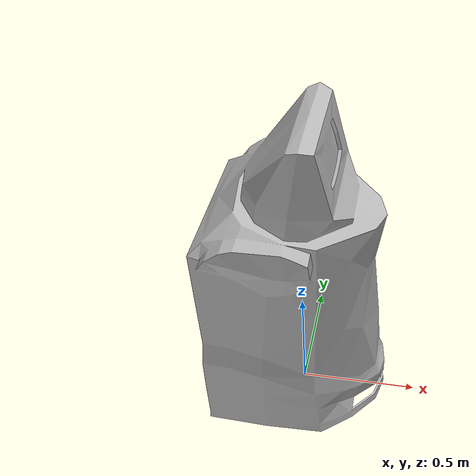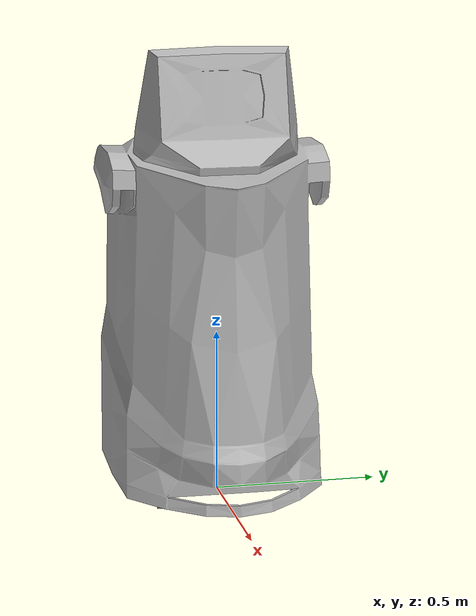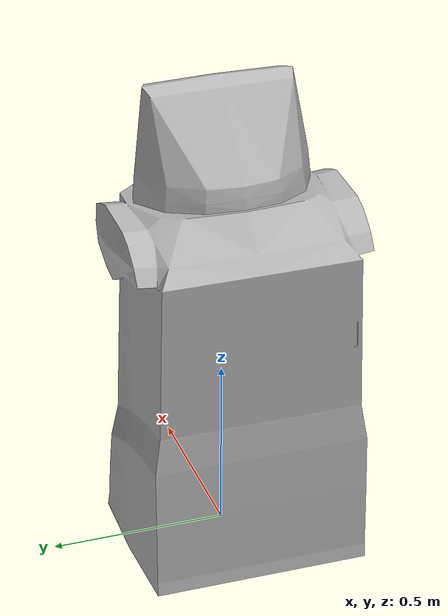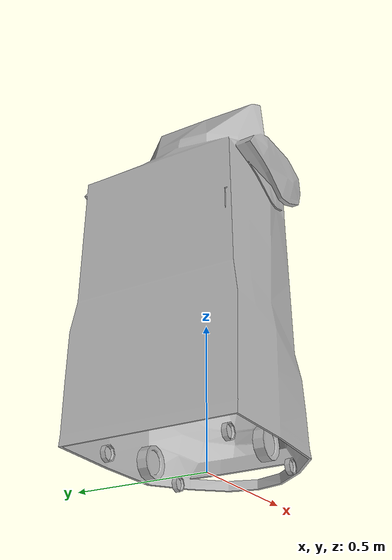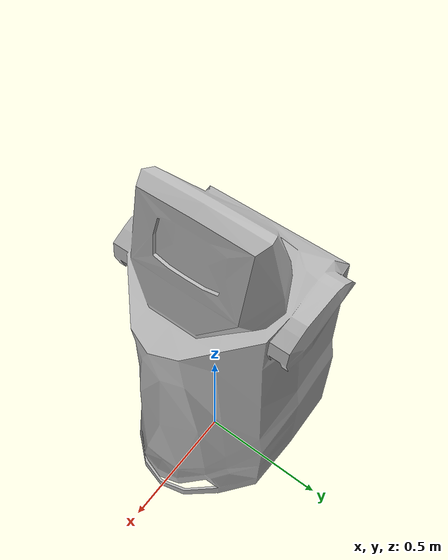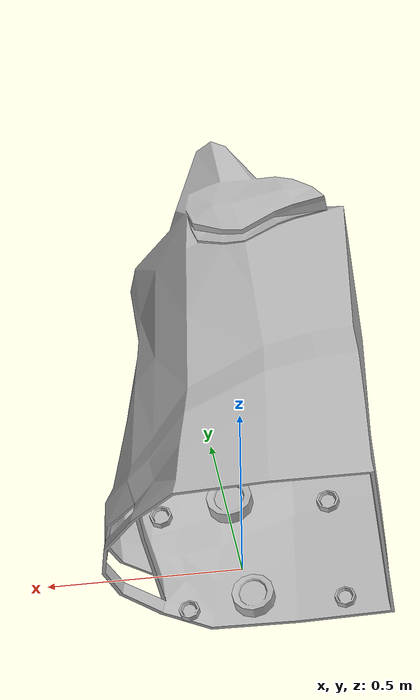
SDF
<?xml version="1.0"?>

<sdf version="1.6">
  <model name="HOSPI">

    <plugin name="slotcar" filename="libslotcar.so">

      <!-- Forward / Backward -->
      <nominal_drive_speed>0.7</nominal_drive_speed>
      <nominal_drive_acceleration>0.5</nominal_drive_acceleration>
      <!-- Theoretical no-slip limit with current suspension: 0.8 -->
      <max_drive_acceleration>0.75</max_drive_acceleration>

      <!-- Turning -->
      <nominal_turn_speed>0.3</nominal_turn_speed>
      <nominal_turn_acceleration>1.5</nominal_turn_acceleration>
      <!-- Theoretical no-slip limit with current suspension: 2.166666... -->
      <max_turn_acceleration>2.0</max_turn_acceleration>

    </plugin>

    <link name="body">
      <pose>0 0 0 0 0 0</pose>

      <inertial>
        <pose>0 0 0.43294142 0 0 0</pose>
        <mass>244.816489</mass>
        <inertia>
          <ixx>26.0429852</ixx>
          <iyy>29.0695006</iyy>
          <izz>23.0523441</izz>
        </inertia>
      </inertial>

      <collision name="collision">
        <pose>0 0 0.7 0 0 0</pose>
        <geometry>
          <box>
            <size>0.7 0.7 1.4</size>
          </box>
        </geometry>
        <surface>
          <friction>
            <torsional>
              <coefficient>0.0</coefficient>
            </torsional>
            <ode>
              <mu>0.0</mu>
              <mu2>0.0</mu2>
            </ode>
            <bullet>
              <friction>0.0</friction>
              <friction2>0.0</friction2>
              <rolling_friction>0.0</rolling_friction>
            </bullet>
          </friction>
        </surface>
      </collision>

      <visual name="visual">
        <geometry>
          <mesh><uri>model://HOSPI/meshes/HOSPI.obj</uri></mesh>
        </geometry>
      </visual>
      <visual name="front_wheel_left">
      <pose>.17 -.21 .03 0 0 0</pose>
        <geometry>
          <mesh><uri>model://HOSPI/meshes/SmallWheel.obj</uri></mesh>
        </geometry>
      </visual>
      <visual name="back_wheel_left">
      <pose>-.24 -.21 .03 0 0 0</pose>
        <geometry>
          <mesh><uri>model://HOSPI/meshes/SmallWheel.obj</uri></mesh>
        </geometry>
      </visual>
      <visual name="front_wheel_right">
      <pose>.17 .21 .03 0 0 0</pose>
        <geometry>
          <mesh><uri>model://HOSPI/meshes/SmallWheel.obj</uri></mesh>
        </geometry>
      </visual>
      <visual name="back_wheel_right">
      <pose>-.24 .21 .03 0 0 0</pose>
        <geometry>
          <mesh><uri>model://HOSPI/meshes/SmallWheel.obj</uri></mesh>
        </geometry>
      </visual>
    </link>

    <link name="suspension_tire_left">
      <!-- This is a dummy link that's used to connect a suspension (prismatic
           joint) to the tire axis (revolute joint) -->
      <pose>0 .21 .06 0 0 0</pose>
      <inertial>
        <mass>1.00</mass>
        <inertia>
          <ixx>1.00</ixx>
          <iyy>1.00</iyy>
          <izz>1.00</izz>
        </inertia>
      </inertial>
    </link>

    <joint name="joint_suspension_tire_left" type="prismatic">
      <parent>body</parent>
      <child>suspension_tire_left</child>
      <axis>
        <xyz>0 0 1</xyz>
        <dynamics>
          <damping>500</damping>
          <spring_reference>-0.05</spring_reference>
          <spring_stiffness>2000</spring_stiffness>
        </dynamics>
      </axis>
      <physics>
        <ode>
          <implicit_spring_damper>true</implicit_spring_damper>
        </ode>
      </physics>
    </joint>

    <link name="tire_left">
      <pose>0 .21 .06 0 0 0</pose>
      <inertial>
        <pose>0 0 0 0 0 0</pose>
        <mass>5.0</mass>
        <inertia>
          <ixx>0.757897446874</ixx>
          <iyy>1.302975553365</iyy>
          <izz>0.757897446874</izz>
        </inertia>
      </inertial>
      <visual name="fat_wheel_left">
        <geometry>
          <mesh><uri>model://HOSPI/meshes/FatWheel.obj</uri></mesh>
        </geometry>
      </visual>
      <collision name="tire_left">
        <geometry>
          <sphere><radius>0.06137</radius></sphere>
        </geometry>
        <surface>
          <contact>
            <ode>
              <kp>10000000.0</kp>
              <kd>1.0</kd>
            </ode>
          </contact>
        </surface>
      </collision>
    </link>

    <joint name="joint_tire_left" type="revolute">
      <parent>suspension_tire_left</parent>
      <child>tire_left</child>
      <axis>
        <xyz>0 1 0</xyz>
      </axis>
    </joint>

    <link name="suspension_tire_right">
      <!-- This is a dummy link that's used to connect a suspension (prismatic
           joint) to the tire axis (revolute joint) -->
      <pose>0 -.21 .06 0 0 0</pose>
      <inertial>
        <mass>1.00</mass>
        <inertia>
          <ixx>1.00</ixx>
          <iyy>1.00</iyy>
          <izz>1.00</izz>
        </inertia>
      </inertial>
    </link>

    <joint name="joint_suspension_tire_right" type="prismatic">
      <parent>body</parent>
      <child>suspension_tire_right</child>
      <axis>
        <xyz>0 0 1</xyz>
        <dynamics>
          <damping>500</damping>
          <spring_reference>-0.05</spring_reference>
          <spring_stiffness>2000</spring_stiffness>
        </dynamics>
      </axis>
      <physics>
        <ode>
          <implicit_spring_damper>true</implicit_spring_damper>
        </ode>
      </physics>
    </joint>

    <link name="tire_right">
      <pose>0 -.21 .06 0 0 0</pose>
      <inertial>
        <pose>0 0 0 0 0 0</pose>
        <mass>5.0</mass>
        <inertia>
          <ixx>0.757897446874</ixx>
          <iyy>1.302975553365</iyy>
          <izz>0.757897446874</izz>
        </inertia>
      </inertial>
      <visual name="fat_wheel_right">
        <geometry>
          <mesh><uri>model://HOSPI/meshes/FatWheel.obj</uri></mesh>
        </geometry>
      </visual>
      <collision name="tire_right">
        <geometry>
          <sphere><radius>0.06137</radius></sphere>
        </geometry>
        <surface>
          <contact>
            <ode>
              <kp>10000000.0</kp>
              <kd>1.0</kd>
            </ode>
          </contact>
        </surface>
      </collision>
    </link>

    <joint name="joint_tire_right" type="revolute">
      <parent>suspension_tire_right</parent>
      <child>tire_right</child>
      <axis>
        <xyz>0 1 0</xyz>
      </axis>
    </joint>

  </model>
</sdf>
